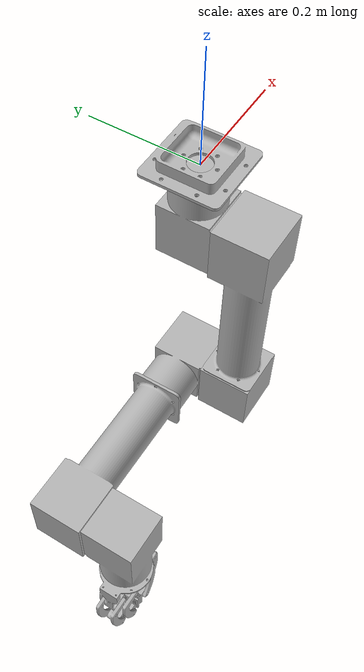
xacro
<?xml version="1.0" ?>
<robot name="sloan" xmlns:xacro="http://www.ros.org/wiki/xacro">

<xacro:include filename="$(find sloan_description)/urdf/materials.xacro" />
<xacro:include filename="$(find sloan_description)/urdf/sloan.trans" />
<link name="base_link">
  <inertial>
    <origin xyz="8.613621438953387e-16 0.0 0.006315916409147712" rpy="0 0 0"/>
    <mass value="0.35992295303903776"/>
    <inertia ixx="0.000606" iyy="0.000606" izz="0.001181" ixy="0.0" iyz="0.0" ixz="0.0"/>
  </inertial>
  <visual>
    <origin xyz="0 0 0" rpy="0 0 0"/>
    <geometry>
      <mesh filename="package://sloan_description/meshes/base_link.stl" scale="0.001 0.001 0.001"/>
    </geometry>
    <material name="silver"/>
  </visual>
  <collision>
    <origin xyz="0 0 0" rpy="0 0 0"/>
    <geometry>
      <mesh filename="package://sloan_description/meshes/base_link.stl" scale="0.001 0.001 0.001"/>
    </geometry>
  </collision>
</link>

<link name="01_Modular_joint_v2_1">
  <inertial>
    <origin xyz="-5.685106769771774e-17 -0.0012801722364952173 -0.0887198630073406" rpy="0 0 0"/>
    <mass value="1.1806411332101794"/>
    <inertia ixx="0.003504" iyy="0.003454" izz="0.001712" ixy="0.0" iyz="-4.5e-05" ixz="-0.0"/>
  </inertial>
  <visual>
    <origin xyz="-0.0 -0.0 -0.0" rpy="0 0 0"/>
    <geometry>
      <mesh filename="package://sloan_description/meshes/01_Modular_joint_v2_1.stl" scale="0.001 0.001 0.001"/>
    </geometry>
    <material name="silver"/>
  </visual>
  <collision>
    <origin xyz="-0.0 -0.0 -0.0" rpy="0 0 0"/>
    <geometry>
      <mesh filename="package://sloan_description/meshes/01_Modular_joint_v2_1.stl" scale="0.001 0.001 0.001"/>
    </geometry>
  </collision>
</link>

<link name="02_big_segment_v1_Component_MESH_v1_1">
  <inertial>
    <origin xyz="-4.3520742565306136e-16 -0.05000000019395925 -0.18249999999999966" rpy="0 0 0"/>
    <mass value="3.0347768251666976"/>
    <inertia ixx="0.101506" iyy="0.101745" izz="0.005289" ixy="0.0" iyz="-0.0" ixz="-0.0"/>
  </inertial>
  <visual>
    <origin xyz="0.0 0.052 0.1185" rpy="0 0 0"/>
    <geometry>
      <mesh filename="package://sloan_description/meshes/02_big_segment_v1_Component_MESH_v1_1.stl" scale="0.001 0.001 0.001"/>
    </geometry>
    <material name="silver"/>
  </visual>
  <collision>
    <origin xyz="0.0 0.052 0.1185" rpy="0 0 0"/>
    <geometry>
      <mesh filename="package://sloan_description/meshes/02_big_segment_v1_Component_MESH_v1_1.stl" scale="0.001 0.001 0.001"/>
    </geometry>
  </collision>
</link>

<link name="03_modular_v2_1">
  <inertial>
    <origin xyz="-4.1179594189214495e-16 0.05071982776350518 0.029780136992659856" rpy="0 0 0"/>
    <mass value="0.9358740690080692"/>
    <inertia ixx="0.002778" iyy="0.002738" izz="0.001357" ixy="0.0" iyz="-3.6e-05" ixz="-0.0"/>
  </inertial>
  <visual>
    <origin xyz="0.0 0.052 0.4835" rpy="0 0 0"/>
    <geometry>
      <mesh filename="package://sloan_description/meshes/03_modular_v2_1.stl" scale="0.001 0.001 0.001"/>
    </geometry>
    <material name="silver"/>
  </visual>
  <collision>
    <origin xyz="0.0 0.052 0.4835" rpy="0 0 0"/>
    <geometry>
      <mesh filename="package://sloan_description/meshes/03_modular_v2_1.stl" scale="0.001 0.001 0.001"/>
    </geometry>
  </collision>
</link>

<link name="04_2nd_segment__MESH_v1_1">
  <inertial>
    <origin xyz="4.4160290535444345e-10 8.496675363289796e-11 0.24324948338696065" rpy="0 0 0"/>
    <mass value="1.2629885104687113"/>
    <inertia ixx="0.008138" iyy="0.00823" izz="0.002194" ixy="0.0" iyz="0.0" ixz="-0.0"/>
  </inertial>
  <visual>
    <origin xyz="0.0 -0.0 0.365" rpy="0 0 0"/>
    <geometry>
      <mesh filename="package://sloan_description/meshes/04_2nd_segment__MESH_v1_1.stl" scale="0.001 0.001 0.001"/>
    </geometry>
    <material name="silver"/>
  </visual>
  <collision>
    <origin xyz="0.0 -0.0 0.365" rpy="0 0 0"/>
    <geometry>
      <mesh filename="package://sloan_description/meshes/04_2nd_segment__MESH_v1_1.stl" scale="0.001 0.001 0.001"/>
    </geometry>
  </collision>
</link>

<link name="05_jointt_v2_1">
  <inertial>
    <origin xyz="-0.029780136992659734 -0.050719827763503936 5.273559366969494e-16" rpy="0 0 0"/>
    <mass value="0.7774953804067037"/>
    <inertia ixx="0.001128" iyy="0.002274" izz="0.002308" ixy="-3e-05" iyz="-0.0" ixz="-0.0"/>
  </inertial>
  <visual>
    <origin xyz="0.0 0.05 0.097" rpy="0 0 0"/>
    <geometry>
      <mesh filename="package://sloan_description/meshes/05_jointt_v2_1.stl" scale="0.001 0.001 0.001"/>
    </geometry>
    <material name="silver"/>
  </visual>
  <collision>
    <origin xyz="0.0 0.05 0.097" rpy="0 0 0"/>
    <geometry>
      <mesh filename="package://sloan_description/meshes/05_jointt_v2_1.stl" scale="0.001 0.001 0.001"/>
    </geometry>
  </collision>
</link>

<link name="06_end_effector_MESH_v1_1">
  <inertial>
    <origin xyz="-0.10737661503148149 4.918640968629151e-05 -5.7383148094572456e-05" rpy="0 0 0"/>
    <mass value="0.9144999769378596"/>
    <inertia ixx="0.001589" iyy="0.004541" izz="0.003483" ixy="-1e-06" iyz="-1e-06" ixz="7e-06"/>
  </inertial>
  <visual>
    <origin xyz="0.1185 0.102 0.097" rpy="0 0 0"/>
    <geometry>
      <mesh filename="package://sloan_description/meshes/06_end_effector_MESH_v1_1.stl" scale="0.001 0.001 0.001"/>
    </geometry>
    <material name="silver"/>
  </visual>
  <collision>
    <origin xyz="0.1185 0.102 0.097" rpy="0 0 0"/>
    <geometry>
      <mesh filename="package://sloan_description/meshes/06_end_effector_MESH_v1_1.stl" scale="0.001 0.001 0.001"/>
    </geometry>
  </collision>
</link>

<joint name="Revolute 1" type="continuous">
  <origin xyz="0.0 0.0 0.0" rpy="0 0 0"/>
  <parent link="base_link"/>
  <child link="01_Modular_joint_v2_1"/>
  <axis xyz="0.0 0.0 -1.0"/>
</joint>

<joint name="Revolute 2" type="continuous">
  <origin xyz="-0.0 -0.052 -0.1185" rpy="0 0 0"/>
  <parent link="01_Modular_joint_v2_1"/>
  <child link="02_big_segment_v1_Component_MESH_v1_1"/>
  <axis xyz="0.0 -1.0 0.0"/>
</joint>

<joint name="Revolute 3" type="continuous">
  <origin xyz="0.0 0.0 -0.365" rpy="0 0 0"/>
  <parent link="02_big_segment_v1_Component_MESH_v1_1"/>
  <child link="03_modular_v2_1"/>
  <axis xyz="-0.0 1.0 -0.0"/>
</joint>

<joint name="Revolute 4" type="continuous">
  <origin xyz="0.0 0.052 0.1185" rpy="0 0 0"/>
  <parent link="03_modular_v2_1"/>
  <child link="04_2nd_segment__MESH_v1_1"/>
  <axis xyz="-0.0 0.0 1.0"/>
</joint>

<joint name="Revolute 5" type="continuous">
  <origin xyz="0.0 -0.05 0.268" rpy="0 0 0"/>
  <parent link="04_2nd_segment__MESH_v1_1"/>
  <child link="05_jointt_v2_1"/>
  <axis xyz="0.0 -1.0 0.0"/>
</joint>

<joint name="Revolute 6" type="continuous">
  <origin xyz="-0.1185 -0.052 0.0" rpy="0 0 0"/>
  <parent link="05_jointt_v2_1"/>
  <child link="06_end_effector_MESH_v1_1"/>
  <axis xyz="-1.0 -0.0 -0.0"/>
</joint>

</robot>

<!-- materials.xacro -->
<robot name="URDF" xmlns:xacro="http://www.ros.org/wiki/xacro" >

<material name="silver">
  <color rgba="0.700 0.700 0.700 1.000"/>
</material>

</robot>
